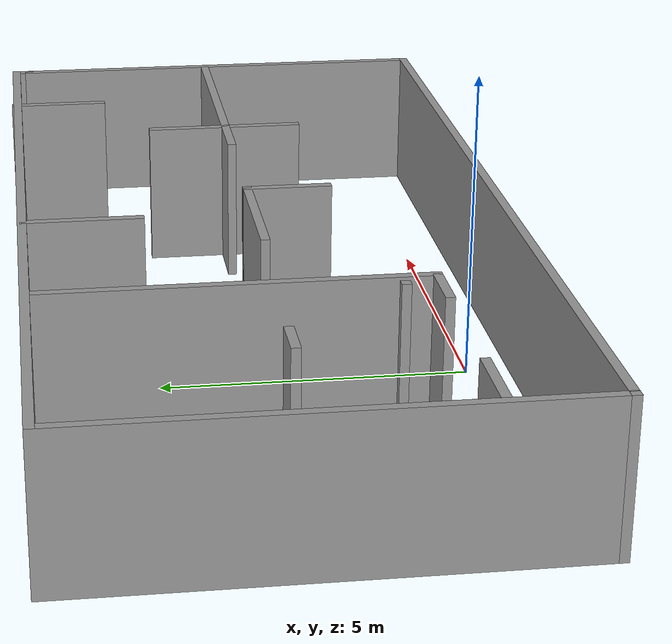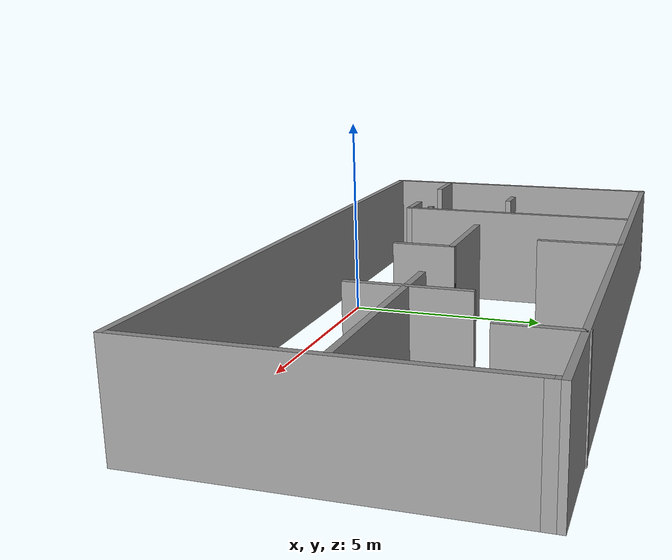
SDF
<?xml version='1.0'?>
<sdf version='1.6'>
  <model name='Untitled'>
    <pose frame=''>1.795 3.17023 0 0 -0 0</pose>
    <link name='Wall_0'>
      <collision name='Wall_0_Collision'>
        <geometry>
          <box>
            <size>8 0.15 2.5</size>
          </box>
        </geometry>
        <pose frame=''>0 0 1.25 0 -0 0</pose>
      </collision>
      <visual name='Wall_0_Visual'>
        <pose frame=''>0 0 1.25 0 -0 0</pose>
        <geometry>
          <box>
            <size>8 0.15 2.5</size>
          </box>
        </geometry>
        <material>
          <script>
            <uri>file://media/materials/scripts/gazebo.material</uri>
            <name>Gazebo/Grey</name>
          </script>
          <ambient>1 1 1 1</ambient>
        </material>
        <meta>
          <layer>0</layer>
        </meta>
      </visual>
      <pose frame=''>-7.925 -0.015229 0 0 -0 1.5708</pose>
    </link>
    <link name='Wall_1'>
      <collision name='Wall_1_Collision'>
        <geometry>
          <box>
            <size>16 0.15 2.5</size>
          </box>
        </geometry>
        <pose frame=''>0 0 1.25 0 -0 0</pose>
      </collision>
      <visual name='Wall_1_Visual'>
        <pose frame=''>0 0 1.25 0 -0 0</pose>
        <geometry>
          <box>
            <size>16 0.15 2.5</size>
          </box>
        </geometry>
        <material>
          <script>
            <uri>file://media/materials/scripts/gazebo.material</uri>
            <name>Gazebo/Grey</name>
          </script>
          <ambient>1 1 1 1</ambient>
        </material>
        <meta>
          <layer>0</layer>
        </meta>
      </visual>
      <pose frame=''>0 3.90977 0 0 -0 0</pose>
    </link>
    <link name='Wall_10'>
      <collision name='Wall_10_Collision'>
        <geometry>
          <box>
            <size>2 0.15 2.5</size>
          </box>
        </geometry>
        <pose frame=''>0 0 1.25 0 -0 0</pose>
      </collision>
      <visual name='Wall_10_Visual'>
        <pose frame=''>0 0 1.25 0 -0 0</pose>
        <geometry>
          <box>
            <size>2 0.15 2.5</size>
          </box>
        </geometry>
        <material>
          <script>
            <uri>file://media/materials/scripts/gazebo.material</uri>
            <name>Gazebo/Grey</name>
          </script>
          <ambient>1 1 1 1</ambient>
        </material>
        <meta>
          <layer>0</layer>
        </meta>
      </visual>
      <pose frame=''>-0.604615 2.94834 0 0 0 -1.5708</pose>
    </link>
    <link name='Wall_12'>
      <collision name='Wall_12_Collision'>
        <geometry>
          <box>
            <size>2.5 0.15 2.5</size>
          </box>
        </geometry>
        <pose frame=''>0 0 1.25 0 -0 0</pose>
      </collision>
      <visual name='Wall_12_Visual'>
        <pose frame=''>0 0 1.25 0 -0 0</pose>
        <geometry>
          <box>
            <size>2.5 0.15 2.5</size>
          </box>
        </geometry>
        <material>
          <script>
            <uri>file://media/materials/scripts/gazebo.material</uri>
            <name>Gazebo/Grey</name>
          </script>
          <ambient>1 1 1 1</ambient>
        </material>
        <meta>
          <layer>0</layer>
        </meta>
      </visual>
      <pose frame=''>-0.614632 0.143627 0 0 -0 0</pose>
    </link>
    <link name='Wall_14'>
      <collision name='Wall_14_Collision'>
        <geometry>
          <box>
            <size>6.25 0.15 2.5</size>
          </box>
        </geometry>
        <pose frame=''>0 0 1.25 0 -0 0</pose>
      </collision>
      <visual name='Wall_14_Visual'>
        <pose frame=''>0 0 1.25 0 -0 0</pose>
        <geometry>
          <box>
            <size>6.25 0.15 2.5</size>
          </box>
        </geometry>
        <material>
          <script>
            <uri>file://media/materials/scripts/gazebo.material</uri>
            <name>Gazebo/Grey</name>
          </script>
          <ambient>1 1 1 1</ambient>
        </material>
        <meta>
          <layer>0</layer>
        </meta>
      </visual>
      <pose frame=''>-3.57069 0.817655 0 0 0 -1.5708</pose>
    </link>
    <link name='Wall_16'>
      <collision name='Wall_16_Collision'>
        <geometry>
          <box>
            <size>5 0.15 2.5</size>
          </box>
        </geometry>
        <pose frame=''>0 0 1.25 0 -0 0</pose>
      </collision>
      <visual name='Wall_16_Visual'>
        <pose frame=''>0 0 1.25 0 -0 0</pose>
        <geometry>
          <box>
            <size>5 0.15 2.5</size>
          </box>
        </geometry>
        <material>
          <script>
            <uri>file://media/materials/scripts/gazebo.material</uri>
            <name>Gazebo/Grey</name>
          </script>
          <ambient>1 1 1 1</ambient>
        </material>
        <meta>
          <layer>0</layer>
        </meta>
      </visual>
      <pose frame=''>5.37714 0.143627 0 0 -0 0</pose>
    </link>
    <link name='Wall_18'>
      <collision name='Wall_18_Collision'>
        <geometry>
          <box>
            <size>1 0.15 2.5</size>
          </box>
        </geometry>
        <pose frame=''>0 0 1.25 0 -0 0</pose>
      </collision>
      <visual name='Wall_18_Visual'>
        <pose frame=''>0 0 1.25 0 -0 0</pose>
        <geometry>
          <box>
            <size>1 0.15 2.5</size>
          </box>
        </geometry>
        <material>
          <script>
            <uri>file://media/materials/scripts/gazebo.material</uri>
            <name>Gazebo/Grey</name>
          </script>
          <ambient>1 1 1 1</ambient>
        </material>
        <meta>
          <layer>0</layer>
        </meta>
      </visual>
      <pose frame=''>-3.99569 -2.23235 0 0 -0 3.14159</pose>
    </link>
    <link name='Wall_20'>
      <collision name='Wall_20_Collision'>
        <geometry>
          <box>
            <size>1.25 0.15 2.5</size>
          </box>
        </geometry>
        <pose frame=''>0 0 1.25 0 -0 0</pose>
      </collision>
      <visual name='Wall_20_Visual'>
        <pose frame=''>0 0 1.25 0 -0 0</pose>
        <geometry>
          <box>
            <size>1.25 0.15 2.5</size>
          </box>
        </geometry>
        <material>
          <script>
            <uri>file://media/materials/scripts/gazebo.material</uri>
            <name>Gazebo/Grey</name>
          </script>
          <ambient>1 1 1 1</ambient>
        </material>
        <meta>
          <layer>0</layer>
        </meta>
      </visual>
      <pose frame=''>-7.23592 -2.24344 0 0 -0 3.14159</pose>
    </link>
    <link name='Wall_22'>
      <collision name='Wall_22_Collision'>
        <geometry>
          <box>
            <size>0.75 0.15 2.5</size>
          </box>
        </geometry>
        <pose frame=''>0 0 1.25 0 -0 0</pose>
      </collision>
      <visual name='Wall_22_Visual'>
        <pose frame=''>0 0 1.25 0 -0 0</pose>
        <geometry>
          <box>
            <size>0.75 0.15 2.5</size>
          </box>
        </geometry>
        <material>
          <script>
            <uri>file://media/materials/scripts/gazebo.material</uri>
            <name>Gazebo/Grey</name>
          </script>
          <ambient>1 1 1 1</ambient>
        </material>
        <meta>
          <layer>0</layer>
        </meta>
      </visual>
      <pose frame=''>-5.60769 0.244562 0 0 -0 0</pose>
    </link>
    <link name='Wall_25'>
      <collision name='Wall_25_Collision'>
        <geometry>
          <box>
            <size>0.15 0.15 2.5</size>
          </box>
        </geometry>
        <pose frame=''>0 0 1.25 0 -0 0</pose>
      </collision>
      <visual name='Wall_25_Visual'>
        <pose frame=''>0 0 1.25 0 -0 0</pose>
        <geometry>
          <box>
            <size>0.15 0.15 2.5</size>
          </box>
        </geometry>
        <material>
          <script>
            <uri>file://media/materials/scripts/gazebo.material</uri>
            <name>Gazebo/Grey</name>
          </script>
          <ambient>0 0 0 0</ambient>
        </material>
        <meta>
          <layer>0</layer>
        </meta>
      </visual>
      <pose frame=''>-3.85279 -1.70075 0 0 -0 0</pose>
    </link>
    <link name='Wall_26'>
      <collision name='Wall_26_Collision'>
        <geometry>
          <box>
            <size>2.75 0.15 2.5</size>
          </box>
        </geometry>
        <pose frame=''>0 0 1.25 0 -0 0</pose>
      </collision>
      <visual name='Wall_26_Visual'>
        <pose frame=''>0 0 1.25 0 -0 0</pose>
        <geometry>
          <box>
            <size>2.75 0.15 2.5</size>
          </box>
        </geometry>
        <material>
          <script>
            <uri>file://media/materials/scripts/gazebo.material</uri>
            <name>Gazebo/Grey</name>
          </script>
          <ambient>1 1 1 1</ambient>
        </material>
        <meta>
          <layer>0</layer>
        </meta>
      </visual>
      <pose frame=''>3.94622 0.166022 0 0 -0 1.5708</pose>
    </link>
    <link name='Wall_28'>
      <collision name='Wall_28_Collision'>
        <geometry>
          <box>
            <size>1.5 0.15 2.5</size>
          </box>
        </geometry>
        <pose frame=''>0 0 1.25 0 -0 0</pose>
      </collision>
      <visual name='Wall_28_Visual'>
        <pose frame=''>0 0 1.25 0 -0 0</pose>
        <geometry>
          <box>
            <size>1.5 0.15 2.5</size>
          </box>
        </geometry>
        <material>
          <script>
            <uri>file://media/materials/scripts/gazebo.material</uri>
            <name>Gazebo/Grey</name>
          </script>
          <ambient>1 1 1 1</ambient>
        </material>
        <meta>
          <layer>0</layer>
        </meta>
      </visual>
      <pose frame=''>0.560368 -0.531373 0 0 0 -1.5708</pose>
    </link>
    <link name='Wall_30'>
      <collision name='Wall_30_Collision'>
        <geometry>
          <box>
            <size>1.75 0.15 2.5</size>
          </box>
        </geometry>
        <pose frame=''>0 0 1.25 0 -0 0</pose>
      </collision>
      <visual name='Wall_30_Visual'>
        <pose frame=''>0 0 1.25 0 -0 0</pose>
        <geometry>
          <box>
            <size>1.75 0.15 2.5</size>
          </box>
        </geometry>
        <material>
          <script>
            <uri>file://media/materials/scripts/gazebo.material</uri>
            <name>Gazebo/Grey</name>
          </script>
          <ambient>1 1 1 1</ambient>
        </material>
        <meta>
          <layer>0</layer>
        </meta>
      </visual>
      <pose frame=''>5.7204 3.14023 0 0 0 -1.5708</pose>
    </link>
    <link name='Wall_4'>
      <collision name='Wall_4_Collision'>
        <geometry>
          <box>
            <size>16 0.15 2.5</size>
          </box>
        </geometry>
        <pose frame=''>0 0 1.25 0 -0 0</pose>
      </collision>
      <visual name='Wall_4_Visual'>
        <pose frame=''>0 0 1.25 0 -0 0</pose>
        <geometry>
          <box>
            <size>16 0.15 2.5</size>
          </box>
        </geometry>
        <material>
          <script>
            <uri>file://media/materials/scripts/gazebo.material</uri>
            <name>Gazebo/Grey</name>
          </script>
          <ambient>1 1 1 1</ambient>
        </material>
        <meta>
          <layer>0</layer>
        </meta>
      </visual>
      <pose frame=''>0 -3.94023 0 0 -0 0</pose>
    </link>
    <link name='Wall_6'>
      <collision name='Wall_6_Collision'>
        <geometry>
          <box>
            <size>7.75 0.15 2.5</size>
          </box>
        </geometry>
        <pose frame=''>0 0 1.25 0 -0 0</pose>
      </collision>
      <visual name='Wall_6_Visual'>
        <pose frame=''>0 0 1.25 0 -0 0</pose>
        <geometry>
          <box>
            <size>7.75 0.15 2.5</size>
          </box>
        </geometry>
        <material>
          <script>
            <uri>file://media/materials/scripts/gazebo.material</uri>
            <name>Gazebo/Grey</name>
          </script>
          <ambient>1 1 1 1</ambient>
        </material>
        <meta>
          <layer>0</layer>
        </meta>
      </visual>
      <pose frame=''>7.925 -0.140229 0 0 -0 1.5708</pose>
    </link>
    <link name='Wall_7'>
      <collision name='Wall_7_Collision'>
        <geometry>
          <box>
            <size>0.25 0.15 2.5</size>
          </box>
        </geometry>
        <pose frame=''>0 0 1.25 0 -0 0</pose>
      </collision>
      <visual name='Wall_7_Visual'>
        <pose frame=''>0 0 1.25 0 -0 0</pose>
        <geometry>
          <box>
            <size>0.25 0.15 2.5</size>
          </box>
        </geometry>
        <material>
          <script>
            <uri>file://media/materials/scripts/gazebo.material</uri>
            <name>Gazebo/Grey</name>
          </script>
          <ambient>1 1 1 1</ambient>
        </material>
        <meta>
          <layer>0</layer>
        </meta>
      </visual>
      <pose frame=''>7.925 3.70977 0 0 -0 1.5708</pose>
    </link>
    <static>1</static>
  </model>
</sdf>
